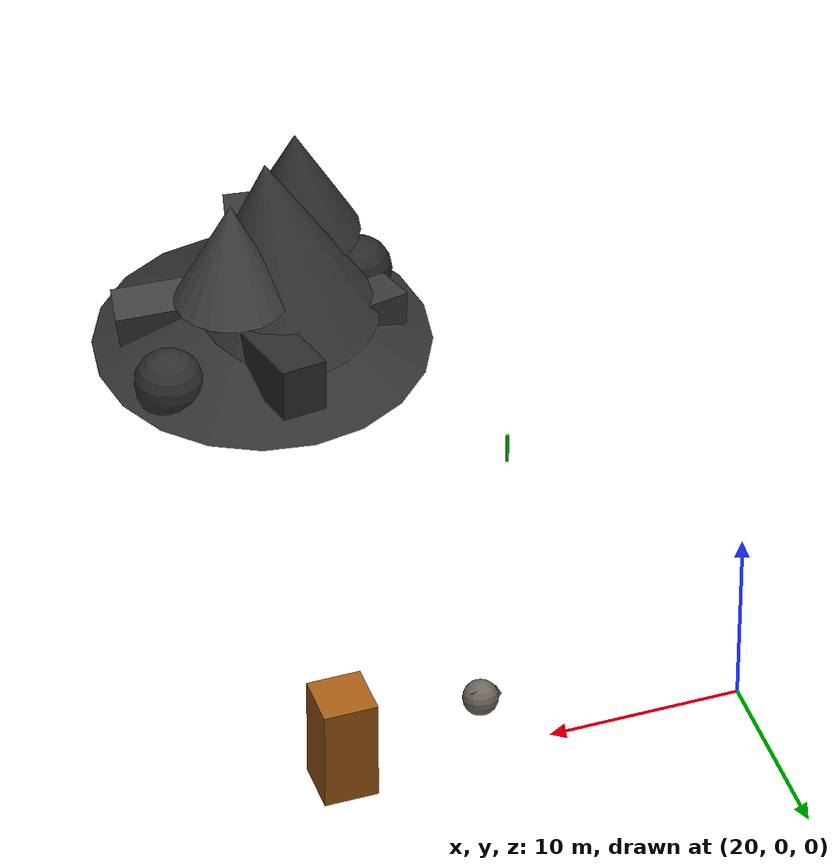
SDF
<sdf version="1.9">
 <world name="ocean_world">
  <model name="rock8">
   <static>true</static>
   <pose>33 -2 1.70 0.25 -0.1 0.2</pose>
   <link name="link">
    <inertial><mass>420</mass></inertial>
    <collision name="c1"><geometry><sphere><radius>0.90</radius></sphere></geometry></collision>
    <collision name="c2">
     <pose>-0.45 0 0.05 0.1 0.4 0.2</pose>
     <geometry><box><size>0.86 0.72 0.60</size></box></geometry>
    </collision>
    <collision name="c3">
     <pose>0.35 0.28 0.22 0.4 0 0.5</pose>
     <geometry><cylinder><radius>0.29</radius><length>0.70</length></cylinder></geometry>
    </collision>
    <visual name="v1">
     <geometry><sphere><radius>0.92</radius></sphere></geometry>
     <material><ambient>0.43 0.4 0.36 1</ambient><diffuse>0.43 0.4 0.36 1</diffuse></material>
    </visual>
    <visual name="v2">
     <pose>-0.45 0.03 0.05 0.1 0.5 0.2</pose>
     <geometry><box><size>0.90 0.74 0.62</size></box></geometry>
     <material><ambient>0.37 0.35 0.31 1</ambient><diffuse>0.37 0.35 0.31 1</diffuse></material>
    </visual>
    <visual name="v3">
     <pose>0.35 0.26 0.22 0.4 0.1 0.5</pose>
     <geometry><cylinder><radius>0.30</radius><length>0.72</length></cylinder></geometry>
     <material><ambient>0.47 0.43 0.38 1</ambient><diffuse>0.47 0.43 0.38 1</diffuse></material>
    </visual>
   </link>
  </model>
  <model name="mountain_far_se">
   <static>true</static>
   <pose>34 -34 0 0 0 0</pose>
   <link name="mountain_link">
    <inertial><mass>6800</mass></inertial>
    <collision name="base_skirt_collision">
     <pose>0 0 2.3 0 0 0</pose>
     <geometry><cone><radius>8.9</radius><length>4.6</length></cone></geometry>
    </collision>
    <collision name="main_spine_collision">
     <pose>-0.5 0.6 7.0 -0.04 0.08 -0.2</pose>
     <geometry><cone><radius>5.1</radius><length>10.4</length></cone></geometry>
    </collision>
    <collision name="east_peak_collision">
     <pose>2.3 2.0 8.0 0.06 -0.05 0.24</pose>
     <geometry><cone><radius>2.9</radius><length>5.8</length></cone></geometry>
    </collision>
    <collision name="west_peak_collision">
     <pose>-2.7 -2.2 8.2 -0.05 0.02 -0.34</pose>
     <geometry><cone><radius>3.2</radius><length>6.5</length></cone></geometry>
    </collision>
    <collision name="north_ridge_collision">
     <pose>0.8 5.0 2.5 0.11 -0.07 0.18</pose>
     <geometry><box><size>2.4 5.9 2.8</size></box></geometry>
    </collision>
    <collision name="south_ridge_collision">
     <pose>-1.0 -4.9 2.3 -0.1 0.08 -0.25</pose>
     <geometry><box><size>2.3 5.4 2.5</size></box></geometry>
    </collision>
    <collision name="buttress_left_collision">
     <pose>-5.2 1.4 1.8 0.07 -0.1 0.28</pose>
     <geometry><box><size>3.8 2.2 1.8</size></box></geometry>
    </collision>
    <collision name="buttress_right_collision">
     <pose>5.4 -1.8 1.9 -0.08 0.12 -0.2</pose>
     <geometry><box><size>4.0 2.3 1.9</size></box></geometry>
    </collision>
    <collision name="talus_c_collision">
     <pose>-6.3 -2.8 1.0 0 0 0</pose>
     <geometry><sphere><radius>1.7</radius></sphere></geometry>
    </collision>
    <collision name="talus_d_collision">
     <pose>6.1 3.0 1.0 0 0 0</pose>
     <geometry><sphere><radius>1.8</radius></sphere></geometry>
    </collision>
    <collision name="mid_connector_d_collision">
     <pose>-1.4 -0.4 4.9 0 0 0</pose>
     <geometry><sphere><radius>2.3</radius></sphere></geometry>
    </collision>
    <collision name="mid_connector_e_collision">
     <pose>1.8 1.1 4.3 0 0 0</pose>
     <geometry><sphere><radius>2.0</radius></sphere></geometry>
    </collision>
    <collision name="mid_connector_f_collision">
     <pose>0.1 -2.0 3.8 0 0 0</pose>
     <geometry><sphere><radius>1.9</radius></sphere></geometry>
    </collision>
    <visual name="base_skirt_visual">
     <pose>0 0 2.3 0 0 0</pose>
     <geometry><cone><radius>9.0</radius><length>4.7</length></cone></geometry>
     <material><ambient>0.19 0.19 0.20 1</ambient><diffuse>0.19 0.19 0.20 1</diffuse></material>
    </visual>
    <visual name="main_spine_visual">
     <pose>-0.5 0.6 7.0 -0.04 0.08 -0.2</pose>
     <geometry><cone><radius>5.2</radius><length>10.6</length></cone></geometry>
     <material><ambient>0.23 0.23 0.24 1</ambient><diffuse>0.23 0.23 0.24 1</diffuse></material>
    </visual>
    <visual name="east_peak_visual">
     <pose>2.3 2.0 8.0 0.06 -0.05 0.24</pose>
     <geometry><cone><radius>3.0</radius><length>5.9</length></cone></geometry>
     <material><ambient>0.26 0.26 0.27 1</ambient><diffuse>0.26 0.26 0.27 1</diffuse></material>
    </visual>
    <visual name="west_peak_visual">
     <pose>-2.7 -2.2 8.2 -0.05 0.02 -0.34</pose>
     <geometry><cone><radius>3.3</radius><length>6.6</length></cone></geometry>
     <material><ambient>0.21 0.21 0.22 1</ambient><diffuse>0.21 0.21 0.22 1</diffuse></material>
    </visual>
    <visual name="north_ridge_visual">
     <pose>0.8 5.0 2.5 0.11 -0.07 0.18</pose>
     <geometry><box><size>2.5 6.0 2.9</size></box></geometry>
     <material><ambient>0.17 0.17 0.18 1</ambient><diffuse>0.17 0.17 0.18 1</diffuse></material>
    </visual>
    <visual name="south_ridge_visual">
     <pose>-1.0 -4.9 2.3 -0.1 0.08 -0.25</pose>
     <geometry><box><size>2.4 5.5 2.6</size></box></geometry>
     <material><ambient>0.20 0.20 0.21 1</ambient><diffuse>0.20 0.20 0.21 1</diffuse></material>
    </visual>
    <visual name="buttress_left_visual">
     <pose>-5.2 1.4 1.8 0.07 -0.1 0.28</pose>
     <geometry><box><size>3.9 2.3 1.9</size></box></geometry>
     <material><ambient>0.22 0.22 0.23 1</ambient><diffuse>0.22 0.22 0.23 1</diffuse></material>
    </visual>
    <visual name="buttress_right_visual">
     <pose>5.4 -1.8 1.9 -0.08 0.12 -0.2</pose>
     <geometry><box><size>4.1 2.4 2.0</size></box></geometry>
     <material><ambient>0.24 0.24 0.25 1</ambient><diffuse>0.24 0.24 0.25 1</diffuse></material>
    </visual>
    <visual name="talus_c_visual">
     <pose>-6.3 -2.8 1.0 0 0 0</pose>
     <geometry><sphere><radius>1.8</radius></sphere></geometry>
     <material><ambient>0.16 0.16 0.17 1</ambient><diffuse>0.16 0.16 0.17 1</diffuse></material>
    </visual>
    <visual name="talus_d_visual">
     <pose>6.1 3.0 1.0 0 0 0</pose>
     <geometry><sphere><radius>1.9</radius></sphere></geometry>
     <material><ambient>0.18 0.18 0.19 1</ambient><diffuse>0.18 0.18 0.19 1</diffuse></material>
    </visual>
    <visual name="mid_connector_d_visual">
     <pose>-1.4 -0.4 4.9 0 0 0</pose>
     <geometry><sphere><radius>2.4</radius></sphere></geometry>
     <material><ambient>0.23 0.23 0.24 1</ambient><diffuse>0.23 0.23 0.24 1</diffuse></material>
    </visual>
    <visual name="mid_connector_e_visual">
     <pose>1.8 1.1 4.3 0 0 0</pose>
     <geometry><sphere><radius>2.1</radius></sphere></geometry>
     <material><ambient>0.25 0.25 0.26 1</ambient><diffuse>0.25 0.25 0.26 1</diffuse></material>
    </visual>
    <visual name="mid_connector_f_visual">
     <pose>0.1 -2.0 3.8 0 0 0</pose>
     <geometry><sphere><radius>2.0</radius></sphere></geometry>
     <material><ambient>0.21 0.21 0.22 1</ambient><diffuse>0.21 0.21 0.22 1</diffuse></material>
    </visual>
   </link>
  </model>
  <model name="seaweed14">
   <static>false</static>
   <pose>25.28 -19.94 1.40 0 0 0</pose>
   <link name="body14">
    <gravity>false</gravity>
    <inertial><mass>1</mass></inertial>
    <visual name="visual">
     <geometry><cylinder><radius>0.09</radius><length>1.7</length></cylinder></geometry>
     <material><ambient>0 0.83 0 1</ambient><diffuse>0 0.83 0 1</diffuse></material>
    </visual>
   </link>
   <plugin filename="/home/kousik/fish_ai_plugin/build/libFishAI.so" name="FishAI"/>
  </model>
  <model name="station_country_B">
   <static>true</static>
   <pose>40.9 -0.1 2.9 0 0 0</pose>
   <link name="station_link">
    <collision name="station_base_collision"><geometry><box><size>2.8 2.8 5.8</size></box></geometry></collision>
    <visual name="station_base_visual">
     <geometry><box><size>2.8 2.8 5.8</size></box></geometry>
     <material>
      <ambient>0.64 0.36 0.08 1</ambient>
      <diffuse>0.64 0.36 0.08 1</diffuse>
      <specular>0.12 0.12 0.12 1</specular>
     </material>
    </visual>
   </link>
  </model>
 </world>
</sdf>
